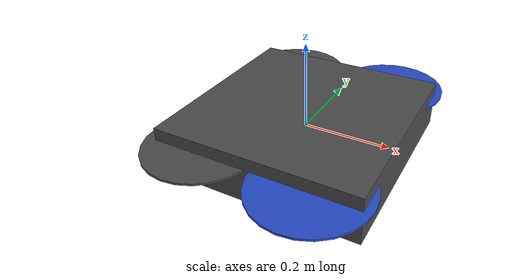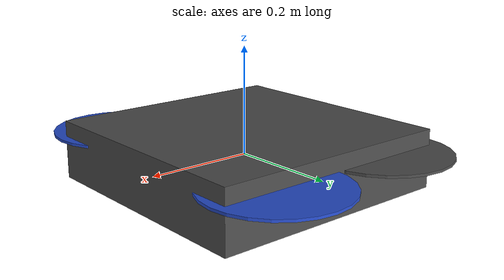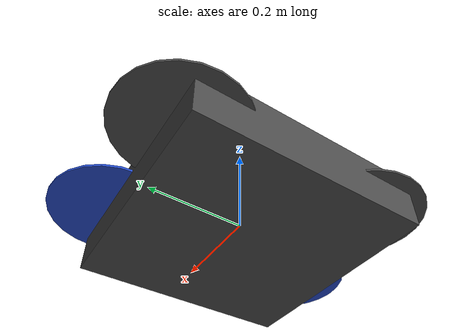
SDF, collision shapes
<sdf version='1.6'>
  <model name='drone'>
    <link name='base_link'>
      <pose frame=''>0 0 0 0 -0 0</pose>
      <inertial>
        <pose frame=''>0 0 0 0 -0 0</pose>
        <mass>1.5</mass>
        <inertia>
          <ixx>0.0347563</ixx>
          <ixy>0</ixy>
          <ixz>0</ixz>
          <iyy>0.0458929</iyy>
          <iyz>0</iyz>
          <izz>0.0977</izz>
        </inertia>
      </inertial>
      <collision name='base_link_inertia_collision'>
        <pose frame=''>0 0 0 0 -0 0</pose>
        <geometry>
          <box>
            <size>0.47 0.47 0.11</size>
          </box>
        </geometry>
        <surface>
          <contact>
            <ode>
              <min_depth>0.001</min_depth>
              <max_vel>0</max_vel>
            </ode>
          </contact>
          <friction>
            <ode/>
          </friction>
        </surface>
      </collision>
      <visual name='base_link_inertia_visual'>
        <pose frame=''>0 0 0 0 -0 0</pose>
        <geometry>
          <mesh>
            <scale>1 1 1</scale>
            <uri>model://rotors_description/meshes/iris.stl</uri>
          </mesh>
        </geometry>
        <material>
          <script>
            <name>Gazebo/DarkGrey</name>
            <uri>file://media/materials/scripts/gazebo.material</uri>
          </script>
        </material>
      </visual>
      <gravity>1</gravity>
      <velocity_decay/>
    </link>
    <link name='/imu_link'>
      <pose frame=''>0 0 0 0 -0 0</pose>
      <inertial>
        <pose frame=''>0 0 0 0 -0 0</pose>
        <mass>0.015</mass>
        <inertia>
          <ixx>1e-05</ixx>
          <ixy>0</ixy>
          <ixz>0</ixz>
          <iyy>1e-05</iyy>
          <iyz>0</iyz>
          <izz>1e-05</izz>
        </inertia>
      </inertial>
    </link>
    <joint name='/imu_joint' type='revolute'>
      <child>/imu_link</child>
      <parent>base_link</parent>
      <axis>
        <xyz>1 0 0</xyz>
        <limit>
          <lower>0</lower>
          <upper>0</upper>
          <effort>0</effort>
          <velocity>0</velocity>
        </limit>
        <dynamics>
          <spring_reference>0</spring_reference>
          <spring_stiffness>0</spring_stiffness>
        </dynamics>
        <use_parent_model_frame>1</use_parent_model_frame>
      </axis>
    </joint>
    <link name='rotor_0'>
      <pose frame=''>0.125 -0.22 0.023 0 -0 0</pose>
      <inertial>
        <pose frame=''>0 0 0 0 -0 0</pose>
        <mass>0.005</mass>
        <inertia>
          <ixx>9.75e-07</ixx>
          <ixy>0</ixy>
          <ixz>0</ixz>
          <iyy>0.000273104</iyy>
          <iyz>0</iyz>
          <izz>0.000274004</izz>
        </inertia>
      </inertial>
      <collision name='rotor_0_collision'>
        <pose frame=''>0 0 0 0 -0 0</pose>
        <geometry>
          <cylinder>
            <length>0.005</length>
            <radius>0.128</radius>
          </cylinder>
        </geometry>
        <surface>
          <contact>
            <ode/>
          </contact>
          <friction>
            <ode/>
          </friction>
        </surface>
      </collision>
      <visual name='rotor_0_visual'>
        <pose frame=''>0.004 -0.001 0 0 -0 0</pose>
        <geometry>
          <mesh>
            <scale>1 1 1</scale>
            <uri>model://rotors_description/meshes/iris_prop_ccw.dae</uri>
          </mesh>
        </geometry>
        <material>
          <script>
            <name>Gazebo/Blue</name>
            <uri>file://media/materials/scripts/gazebo.material</uri>
          </script>
        </material>
      </visual>
      <gravity>1</gravity>
      <velocity_decay/>
    </link>
    <joint name='rotor_0_joint' type='revolute'>
      <child>rotor_0</child>
      <parent>base_link</parent>
      <axis>
        <xyz>0 0 1</xyz>
        <limit>
          <lower>-1e+16</lower>
          <upper>1e+16</upper>
        </limit>
        <dynamics>
          <spring_reference>0</spring_reference>
          <spring_stiffness>0</spring_stiffness>
        </dynamics>
        <use_parent_model_frame>1</use_parent_model_frame>
      </axis>
    </joint>
    <link name='rotor_1'>
      <pose frame=''>-0.138 0.206 0.023 0 -0 0</pose>
      <inertial>
        <pose frame=''>0 0 0 0 -0 0</pose>
        <mass>0.005</mass>
        <inertia>
          <ixx>9.75e-07</ixx>
          <ixy>0</ixy>
          <ixz>0</ixz>
          <iyy>0.000273104</iyy>
          <iyz>0</iyz>
          <izz>0.000274004</izz>
        </inertia>
      </inertial>
      <collision name='rotor_1_collision'>
        <pose frame=''>0 0 0 0 -0 0</pose>
        <geometry>
          <cylinder>
            <length>0.005</length>
            <radius>0.128</radius>
          </cylinder>
        </geometry>
        <surface>
          <contact>
            <ode/>
          </contact>
          <friction>
            <ode/>
          </friction>
        </surface>
      </collision>
      <visual name='rotor_1_visual'>
        <pose frame=''>0.004 0 0 0 -0 0</pose>
        <geometry>
          <mesh>
            <scale>1 1 1</scale>
            <uri>model://rotors_description/meshes/iris_prop_ccw.dae</uri>
          </mesh>
        </geometry>
        <material>
          <script>
            <name>Gazebo/DarkGrey</name>
            <uri>file://media/materials/scripts/gazebo.material</uri>
          </script>
        </material>
      </visual>
      <gravity>1</gravity>
      <velocity_decay/>
    </link>
    <joint name='rotor_1_joint' type='revolute'>
      <child>rotor_1</child>
      <parent>base_link</parent>
      <axis>
        <xyz>0 0 1</xyz>
        <limit>
          <lower>-1e+16</lower>
          <upper>1e+16</upper>
        </limit>
        <dynamics>
          <spring_reference>0</spring_reference>
          <spring_stiffness>0</spring_stiffness>
        </dynamics>
        <use_parent_model_frame>1</use_parent_model_frame>
      </axis>
    </joint>
    <link name='rotor_2'>
      <pose frame=''>0.125 0.223 0.023 0 -0 0</pose>
      <inertial>
        <pose frame=''>0 0 0 0 -0 0</pose>
        <mass>0.005</mass>
        <inertia>
          <ixx>9.75e-07</ixx>
          <ixy>0</ixy>
          <ixz>0</ixz>
          <iyy>0.000273104</iyy>
          <iyz>0</iyz>
          <izz>0.000274004</izz>
        </inertia>
      </inertial>
      <collision name='rotor_2_collision'>
        <pose frame=''>0 0 0 0 -0 0</pose>
        <geometry>
          <cylinder>
            <length>0.005</length>
            <radius>0.128</radius>
          </cylinder>
        </geometry>
        <surface>
          <contact>
            <ode/>
          </contact>
          <friction>
            <ode/>
          </friction>
        </surface>
      </collision>
      <visual name='rotor_2_visual'>
        <pose frame=''>0 0 0 0 -0 0</pose>
        <geometry>
          <mesh>
            <scale>1 1 1</scale>
            <uri>model://rotors_description/meshes/iris_prop_cw.dae</uri>
          </mesh>
        </geometry>
        <material>
          <script>
            <name>Gazebo/Blue</name>
            <uri>file://media/materials/scripts/gazebo.material</uri>
          </script>
        </material>
      </visual>
      <gravity>1</gravity>
      <velocity_decay/>
    </link>
    <joint name='rotor_2_joint' type='revolute'>
      <child>rotor_2</child>
      <parent>base_link</parent>
      <axis>
        <xyz>0 0 1</xyz>
        <limit>
          <lower>-1e+16</lower>
          <upper>1e+16</upper>
        </limit>
        <dynamics>
          <spring_reference>0</spring_reference>
          <spring_stiffness>0</spring_stiffness>
        </dynamics>
        <use_parent_model_frame>1</use_parent_model_frame>
      </axis>
    </joint>
    <link name='rotor_3'>
      <pose frame=''>-0.138 -0.202 0.023 0 -0 0</pose>
      <inertial>
        <pose frame=''>0 0 0 0 -0 0</pose>
        <mass>0.005</mass>
        <inertia>
          <ixx>9.75e-07</ixx>
          <ixy>0</ixy>
          <ixz>0</ixz>
          <iyy>0.000273104</iyy>
          <iyz>0</iyz>
          <izz>0.000274004</izz>
        </inertia>
      </inertial>
      <collision name='rotor_3_collision'>
        <pose frame=''>0 0 0 0 -0 0</pose>
        <geometry>
          <cylinder>
            <length>0.005</length>
            <radius>0.128</radius>
          </cylinder>
        </geometry>
        <surface>
          <contact>
            <ode/>
          </contact>
          <friction>
            <ode/>
          </friction>
        </surface>
      </collision>
      <visual name='rotor_3_visual'>
        <pose frame=''>0 0 0 0 -0 0</pose>
        <geometry>
          <mesh>
            <scale>1 1 1</scale>
            <uri>model://rotors_description/meshes/iris_prop_cw.dae</uri>
          </mesh>
        </geometry>
        <material>
          <script>
            <name>Gazebo/DarkGrey</name>
            <uri>file://media/materials/scripts/gazebo.material</uri>
          </script>
        </material>
      </visual>
      <gravity>1</gravity>
      <velocity_decay/>
    </link>
    <joint name='rotor_3_joint' type='revolute'>
      <child>rotor_3</child>
      <parent>base_link</parent>
      <axis>
        <xyz>0 0 1</xyz>
        <limit>
          <lower>-1e+16</lower>
          <upper>1e+16</upper>
        </limit>
        <dynamics>
          <spring_reference>0</spring_reference>
          <spring_stiffness>0</spring_stiffness>
        </dynamics>
        <use_parent_model_frame>1</use_parent_model_frame>
      </axis>
    </joint>

    <static>0</static>

<!-- Drone controller plugin -->
    <plugin name='drone_controller' filename='libdrone_controller_plugin.so'>
      <minimum_flying_altitude>0.3</minimum_flying_altitude>
      <max_xy_speed>8.0</max_xy_speed>
      <max_z_speed>3.0</max_z_speed>
      <max_z_accel>30</max_z_accel>

      <mpc_xy_p>0.95</mpc_xy_p>
      <mpc_xy_d>0.1</mpc_xy_d>
      <mpc_z_p>4.0</mpc_z_p>
      <mpc_z_i>0.1</mpc_z_i>

      <mpc_xy_vel_p>0.1</mpc_xy_vel_p>
      <mpc_xy_vel_i>0</mpc_xy_vel_i>
      <mpc_xy_vel_d>0.05</mpc_xy_vel_d>
      <mpc_xy_vel_i_max>20.0</mpc_xy_vel_i_max>
      <mpc_max_att>0.1</mpc_max_att>
      <mpc_z_vel_p>5.0</mpc_z_vel_p>
      <mpc_z_vel_i>0.5</mpc_z_vel_i>
      <mpc_z_vel_d>0.5</mpc_z_vel_d>
      <mpc_z_vel_i_max>20.0</mpc_z_vel_i_max>

      <mc_att_p>30.0</mc_att_p>
      <mc_att_d>5.0</mc_att_d>
      <mc_yaw_p>20.0</mc_yaw_p>
      <mc_yaw_d>8.0</mc_yaw_d>

      <mc_attrate_p>1.0</mc_attrate_p>
      <mc_attrate_d>0.0</mc_attrate_d>
      <mc_attrate_max>220</mc_attrate_max>
      <mc_yawrate_p>1.0</mc_yawrate_p>
      <mc_yawrate_max>3.14</mc_yawrate_max>
    </plugin>
    <plugin name='drone_props_spinner' filename='libdrone_props_spinner_plugin.so'>
      <max_prop_speed>20</max_prop_speed>
    </plugin>
  </model>
</sdf>
